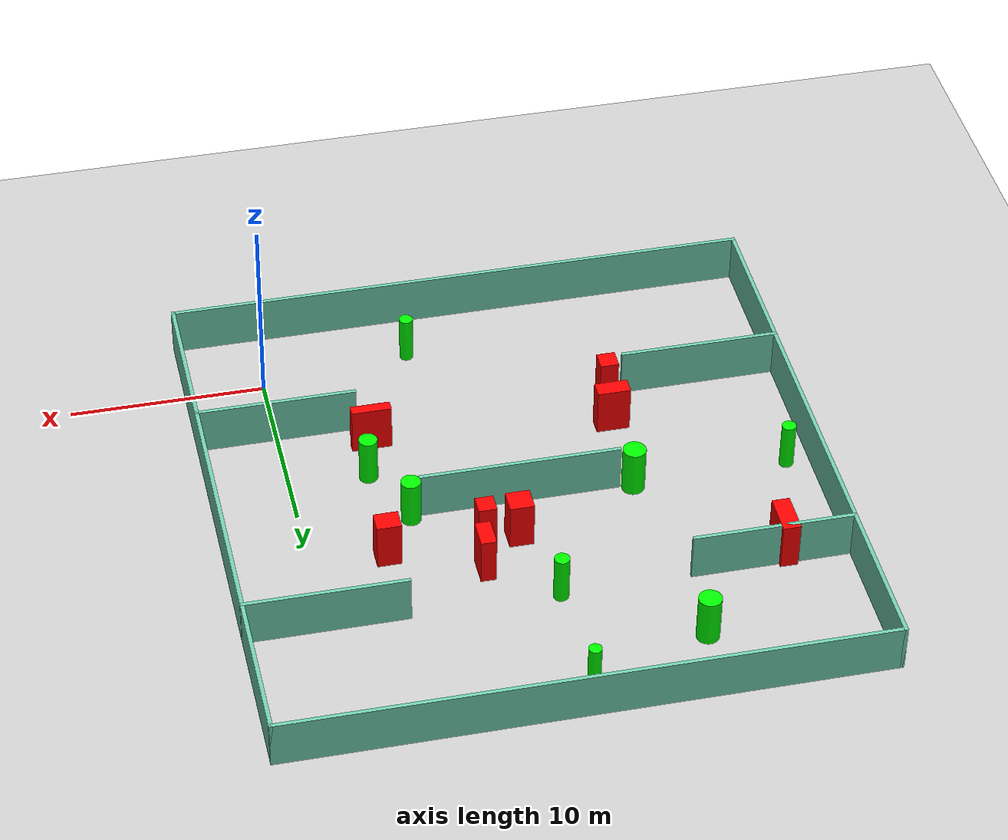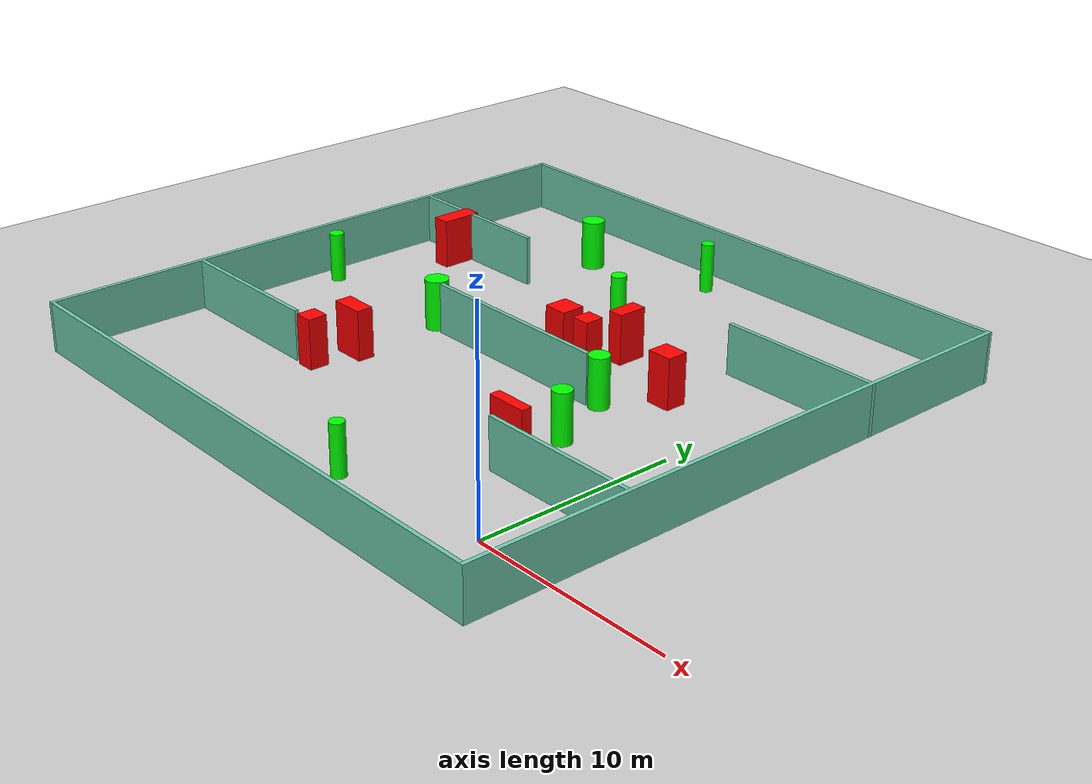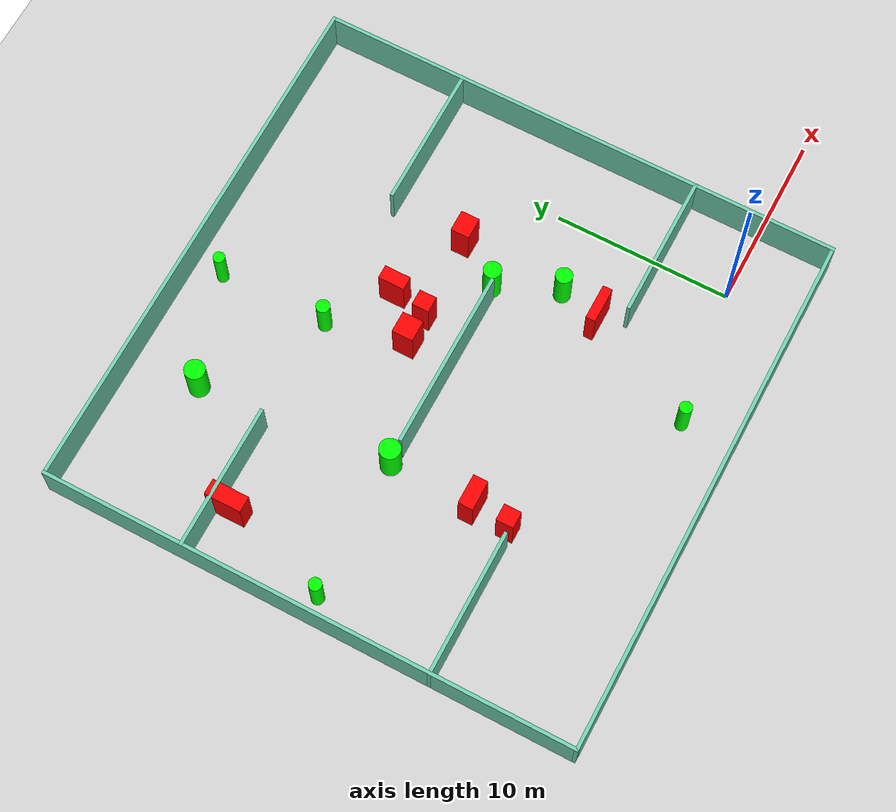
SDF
<sdf version="1.7">
 <world name="default">
  <light name="sun" type="directional">
   <pose>0 0 10 0 -0 0</pose>
   <diffuse>0.8 0.8 0.8 1</diffuse>
   <specular>0.2 0.2 0.2 1</specular>
   <attenuation>
    <range>1000</range>
    <constant>0.9</constant>
    <linear>0.01</linear>
    <quadratic>0.001</quadratic>
   </attenuation>
   <direction>-0.5 0.1 -0.9</direction>
   <spot><inner_angle>0</inner_angle><outer_angle>0</outer_angle><falloff>0</falloff></spot>
  </light>
  <model name="ground_plane">
   <static>1</static>
   <link name="link">
    <collision name="collision">
     <geometry><plane><normal>0 0 1</normal><size>100 100</size></plane></geometry>
     <surface>
      <contact><collide_bitmask>65535</collide_bitmask></contact>
      <friction><ode><mu>100</mu><mu2>50</mu2></ode></friction>
     </surface>
    </collision>
    <visual name="visual">
     <cast_shadows>0</cast_shadows>
     <geometry><plane><normal>0 0 1</normal><size>100 100</size></plane></geometry>
     <material>
      <script><uri>file://media/materials/scripts/gazebo.material</uri><name>Gazebo/Grey</name></script>
     </material>
    </visual>
   </link>
  </model>
  <gravity>0 0 -9.8</gravity>
  <magnetic_field>6e-06 2.3e-05 -4.2e-05</magnetic_field>
  <atmosphere type="adiabatic"/>
  <physics type="ode">
   <max_step_size>0.001</max_step_size>
   <real_time_factor>1</real_time_factor>
   <real_time_update_rate>1000</real_time_update_rate>
  </physics>
  <scene><ambient>0.4 0.4 0.4 1</ambient><background>0.7 0.7 0.7 1</background><shadows>1</shadows></scene>
  <spherical_coordinates>
   <surface_model>EARTH_WGS84</surface_model>
   <latitude_deg>0</latitude_deg>
   <longitude_deg>0</longitude_deg>
   <elevation>0</elevation>
   <heading_deg>0</heading_deg>
  </spherical_coordinates>
  <model name="my_base_walls">
   <link name="Wall_10">
    <collision name="Wall_10_Collision">
     <geometry><box><size>8.2 0.2 2.5</size></box></geometry>
     <pose>0 0 1.25 0 -0 0</pose>
    </collision>
    <visual name="Wall_10_Visual">
     <pose>0 0 1.25 0 -0 0</pose>
     <geometry><box><size>8.2 0.2 2.5</size></box></geometry>
     <material>
      <script><uri>file://media/materials/scripts/gazebo.material</uri><name>Gazebo/Grey</name></script>
      <ambient>0.435294 0.796078 0.67451 1</ambient>
     </material>
     <meta><layer>0</layer></meta>
    </visual>
    <pose>-11 -7 0 0 -0 0</pose>
   </link>
   <link name="Wall_12">
    <collision name="Wall_12_Collision">
     <geometry><box><size>8.2 0.2 2.5</size></box></geometry>
     <pose>0 0 1.25 0 -0 0</pose>
    </collision>
    <visual name="Wall_12_Visual">
     <pose>0 0 1.25 0 -0 0</pose>
     <geometry><box><size>8.2 0.2 2.5</size></box></geometry>
     <material>
      <script><uri>file://media/materials/scripts/gazebo.material</uri><name>Gazebo/Grey</name></script>
      <ambient>0.435294 0.796078 0.67451 1</ambient>
     </material>
     <meta><layer>0</layer></meta>
    </visual>
    <pose>-11 7 0 0 -0 0</pose>
   </link>
   <link name="Wall_14">
    <collision name="Wall_14_Collision">
     <geometry><box><size>8.2 0.2 2.5</size></box></geometry>
     <pose>0 0 1.25 0 -0 0</pose>
    </collision>
    <visual name="Wall_14_Visual">
     <pose>0 0 1.25 0 -0 0</pose>
     <geometry><box><size>8.2 0.2 2.5</size></box></geometry>
     <material>
      <script><uri>file://media/materials/scripts/gazebo.material</uri><name>Gazebo/Grey</name></script>
      <ambient>0.435294 0.796078 0.67451 1</ambient>
     </material>
     <meta><layer>0</layer></meta>
    </visual>
    <pose>11 7 0 0 -0 3.14159</pose>
   </link>
   <link name="Wall_16">
    <collision name="Wall_16_Collision">
     <geometry><box><size>10.2 0.2 2.5</size></box></geometry>
     <pose>0 0 1.25 0 -0 0</pose>
    </collision>
    <visual name="Wall_16_Visual">
     <pose>0 0 1.25 0 -0 0</pose>
     <geometry><box><size>10.2 0.2 2.5</size></box></geometry>
     <material>
      <script><uri>file://media/materials/scripts/gazebo.material</uri><name>Gazebo/Grey</name></script>
      <ambient>0.435294 0.796078 0.67451 1</ambient>
     </material>
     <meta><layer>0</layer></meta>
    </visual>
    <pose>0 0 0 0 -0 3.14159</pose>
   </link>
   <link name="Wall_2">
    <collision name="Wall_2_Collision">
     <geometry><box><size>30.2 0.2 2.5</size></box></geometry>
     <pose>0 0 1.25 0 -0 0</pose>
    </collision>
    <visual name="Wall_2_Visual">
     <pose>0 0 1.25 0 -0 0</pose>
     <geometry><box><size>30.2 0.2 2.5</size></box></geometry>
     <material>
      <script><uri>file://media/materials/scripts/gazebo.material</uri><name>Gazebo/Grey</name></script>
      <ambient>0.435294 0.796078 0.67451 1</ambient>
     </material>
     <meta><layer>0</layer></meta>
    </visual>
    <pose>0 -15 0 0 -0 3.14159</pose>
   </link>
   <link name="Wall_3">
    <collision name="Wall_3_Collision">
     <geometry><box><size>30.2 0.2 2.5</size></box></geometry>
     <pose>0 0 1.25 0 -0 0</pose>
    </collision>
    <visual name="Wall_3_Visual">
     <pose>0 0 1.25 0 -0 0</pose>
     <geometry><box><size>30.2 0.2 2.5</size></box></geometry>
     <material>
      <script><uri>file://media/materials/scripts/gazebo.material</uri><name>Gazebo/Grey</name></script>
      <ambient>0.435294 0.796078 0.67451 1</ambient>
     </material>
     <meta><layer>0</layer></meta>
    </visual>
    <pose>-15 0 0 0 -0 1.5708</pose>
   </link>
   <link name="Wall_4">
    <collision name="Wall_4_Collision">
     <geometry><box><size>30.2 0.2 2.5</size></box></geometry>
     <pose>0 0 1.25 0 -0 0</pose>
    </collision>
    <visual name="Wall_4_Visual">
     <pose>0 0 1.25 0 -0 0</pose>
     <geometry><box><size>30.2 0.2 2.5</size></box></geometry>
     <material>
      <script><uri>file://media/materials/scripts/gazebo.material</uri><name>Gazebo/Grey</name></script>
      <ambient>0.435294 0.796078 0.67451 1</ambient>
     </material>
     <meta><layer>0</layer></meta>
    </visual>
    <pose>0 15 0 0 -0 0</pose>
   </link>
   <link name="Wall_6">
    <collision name="Wall_6_Collision">
     <geometry><box><size>30.2 0.2 2.5</size></box></geometry>
     <pose>0 0 1.25 0 -0 0</pose>
    </collision>
    <visual name="Wall_6_Visual">
     <pose>0 0 1.25 0 -0 0</pose>
     <geometry><box><size>30.2 0.2 2.5</size></box></geometry>
     <material>
      <script><uri>file://media/materials/scripts/gazebo.material</uri><name>Gazebo/Grey</name></script>
      <ambient>0.435294 0.796078 0.67451 1</ambient>
     </material>
     <meta><layer>0</layer></meta>
    </visual>
    <pose>15 0 0 0 -0 1.5708</pose>
   </link>
   <link name="Wall_8">
    <collision name="Wall_8_Collision">
     <geometry><box><size>8.2 0.2 2.5</size></box></geometry>
     <pose>0 0 1.25 0 -0 0</pose>
    </collision>
    <visual name="Wall_8_Visual">
     <pose>0 0 1.25 0 -0 0</pose>
     <geometry><box><size>8.2 0.2 2.5</size></box></geometry>
     <material>
      <script><uri>file://media/materials/scripts/gazebo.material</uri><name>Gazebo/Grey</name></script>
      <ambient>0.435294 0.796078 0.67451 1</ambient>
     </material>
     <meta><layer>0</layer></meta>
    </visual>
    <pose>11 -7 0 0 -0 3.14159</pose>
   </link>
   <static>1</static>
   <pose>-11 11 0 0 -0 0</pose>
  </model>
  <model name="cylinder1">
   <static>1</static>
   <link name="link">
    <inertial>
     <mass>1</mass>
     <inertia><ixx>0.5</ixx><ixy>0</ixy><ixz>0</ixz><iyy>0.5</iyy><iyz>0</iyz><izz>1</izz></inertia>
    </inertial>
    <collision name="collision">
     <geometry><cylinder><radius>0.5737264908327451</radius><length>2.5</length></cylinder></geometry>
    </collision>
    <visual name="visual">
     <geometry><cylinder><radius>0.5737264908327451</radius><length>2.5</length></cylinder></geometry>
     <material>
      <ambient>0 1 0 1</ambient>
      <diffuse>0 1 0 1</diffuse>
      <specular>0.1 0.1 0.1 1</specular>
      <emissive>0 0 0 0</emissive>
     </material>
    </visual>
   </link>
   <pose>-17.624473274105704 22.15642886900757 1.25 0 0 0</pose>
  </model>
  <model name="cylinder2">
   <static>1</static>
   <link name="link">
    <inertial>
     <mass>1</mass>
     <inertia><ixx>0.5</ixx><ixy>0</ixy><ixz>0</ixz><iyy>0.5</iyy><iyz>0</iyz><izz>1</izz></inertia>
    </inertial>
    <collision name="collision">
     <geometry><cylinder><radius>0.32285912051089544</radius><length>2.5</length></cylinder></geometry>
    </collision>
    <visual name="visual">
     <geometry><cylinder><radius>0.32285912051089544</radius><length>2.5</length></cylinder></geometry>
     <material>
      <ambient>0 1 0 1</ambient>
      <diffuse>0 1 0 1</diffuse>
      <specular>0.1 0.1 0.1 1</specular>
      <emissive>0 0 0 0</emissive>
     </material>
    </visual>
   </link>
   <pose>-11.53690169816796 24.267791441031065 1.25 0 0 0</pose>
  </model>
  <model name="cylinder3">
   <static>1</static>
   <link name="link">
    <inertial>
     <mass>1</mass>
     <inertia><ixx>0.5</ixx><ixy>0</ixy><ixz>0</ixz><iyy>0.5</iyy><iyz>0</iyz><izz>1</izz></inertia>
    </inertial>
    <collision name="collision">
     <geometry><cylinder><radius>0.4729806176644654</radius><length>2.5</length></cylinder></geometry>
    </collision>
    <visual name="visual">
     <geometry><cylinder><radius>0.4729806176644654</radius><length>2.5</length></cylinder></geometry>
     <material>
      <ambient>0 1 0 1</ambient>
      <diffuse>0 1 0 1</diffuse>
      <specular>0.1 0.1 0.1 1</specular>
      <emissive>0 0 0 0</emissive>
     </material>
    </visual>
   </link>
   <pose>-3.9920921874644364 7.791197352728638 1.25 0 0 0</pose>
  </model>
  <model name="cylinder4">
   <static>1</static>
   <link name="link">
    <inertial>
     <mass>1</mass>
     <inertia><ixx>0.5</ixx><ixy>0</ixy><ixz>0</ixz><iyy>0.5</iyy><iyz>0</iyz><izz>1</izz></inertia>
    </inertial>
    <collision name="collision">
     <geometry><cylinder><radius>0.5852479316174475</radius><length>2.5</length></cylinder></geometry>
    </collision>
    <visual name="visual">
     <geometry><cylinder><radius>0.5852479316174475</radius><length>2.5</length></cylinder></geometry>
     <material>
      <ambient>0 1 0 1</ambient>
      <diffuse>0 1 0 1</diffuse>
      <specular>0.1 0.1 0.1 1</specular>
      <emissive>0 0 0 0</emissive>
     </material>
    </visual>
   </link>
   <pose>-16.738506482663738 11.22350070993039 1.25 0 0 0</pose>
  </model>
  <model name="cylinder5">
   <static>1</static>
   <link name="link">
    <inertial>
     <mass>1</mass>
     <inertia><ixx>0.5</ixx><ixy>0</ixy><ixz>0</ixz><iyy>0.5</iyy><iyz>0</iyz><izz>1</izz></inertia>
    </inertial>
    <collision name="collision">
     <geometry><cylinder><radius>0.5007773931611735</radius><length>2.5</length></cylinder></geometry>
    </collision>
    <visual name="visual">
     <geometry><cylinder><radius>0.5007773931611735</radius><length>2.5</length></cylinder></geometry>
     <material>
      <ambient>0 1 0 1</ambient>
      <diffuse>0 1 0 1</diffuse>
      <specular>0.1 0.1 0.1 1</specular>
      <emissive>0 0 0 0</emissive>
     </material>
    </visual>
   </link>
   <pose>-5.457314398447764 11.253395019373663 1.25 0 0 0</pose>
  </model>
  <model name="cylinder6">
   <static>1</static>
   <link name="link">
    <inertial>
     <mass>1</mass>
     <inertia><ixx>0.5</ixx><ixy>0</ixy><ixz>0</ixz><iyy>0.5</iyy><iyz>0</iyz><izz>1</izz></inertia>
    </inertial>
    <collision name="collision">
     <geometry><cylinder><radius>0.36054779086539274</radius><length>2.5</length></cylinder></geometry>
    </collision>
    <visual name="visual">
     <geometry><cylinder><radius>0.36054779086539274</radius><length>2.5</length></cylinder></geometry>
     <material>
      <ambient>0 1 0 1</ambient>
      <diffuse>0 1 0 1</diffuse>
      <specular>0.1 0.1 0.1 1</specular>
      <emissive>0 0 0 0</emissive>
     </material>
    </visual>
   </link>
   <pose>-24.704806218461453 11.083402679570971 1.25 0 0 0</pose>
  </model>
  <model name="cylinder7">
   <static>1</static>
   <link name="link">
    <inertial>
     <mass>1</mass>
     <inertia><ixx>0.5</ixx><ixy>0</ixy><ixz>0</ixz><iyy>0.5</iyy><iyz>0</iyz><izz>1</izz></inertia>
    </inertial>
    <collision name="collision">
     <geometry><cylinder><radius>0.3822254287581357</radius><length>2.5</length></cylinder></geometry>
    </collision>
    <visual name="visual">
     <geometry><cylinder><radius>0.3822254287581357</radius><length>2.5</length></cylinder></geometry>
     <material>
      <ambient>0 1 0 1</ambient>
      <diffuse>0 1 0 1</diffuse>
      <specular>0.1 0.1 0.1 1</specular>
      <emissive>0 0 0 0</emissive>
     </material>
    </visual>
   </link>
   <pose>-11.433684708000492 18.075444105031988 1.25 0 0 0</pose>
  </model>
  <model name="cylinder8">
   <static>1</static>
   <link name="link">
    <inertial>
     <mass>1</mass>
     <inertia><ixx>0.5</ixx><ixy>0</ixy><ixz>0</ixz><iyy>0.5</iyy><iyz>0</iyz><izz>1</izz></inertia>
    </inertial>
    <collision name="collision">
     <geometry><cylinder><radius>0.3511118619881572</radius><length>2.5</length></cylinder></geometry>
    </collision>
    <visual name="visual">
     <geometry><cylinder><radius>0.3511118619881572</radius><length>2.5</length></cylinder></geometry>
     <material>
      <ambient>0 1 0 1</ambient>
      <diffuse>0 1 0 1</diffuse>
      <specular>0.1 0.1 0.1 1</specular>
      <emissive>0 0 0 0</emissive>
     </material>
    </visual>
   </link>
   <pose>-7.687490786086929 -1.0287458979352913 1.25 0 0 0</pose>
  </model>
  <model name="box1">
   <static>1</static>
   <link name="link">
    <inertial>
     <mass>1</mass>
     <inertia><ixx>0.083</ixx><ixy>0</ixy><ixz>0</ixz><iyy>0.083</iyy><iyz>0</iyz><izz>0.083</izz></inertia>
    </inertial>
    <collision name="collision">
     <geometry><box><size>1.6960735415541608 0.8369723623135621 2.5</size></box></geometry>
    </collision>
    <visual name="visual">
     <geometry><box><size>1.6960735415541608 0.8369723623135621 2.5</size></box></geometry>
     <material>
      <ambient>1 0 0 1</ambient>
      <diffuse>1 0 0 1</diffuse>
      <specular>0.1 0.1 0.1 1</specular>
      <emissive>0 0 0 0</emissive>
     </material>
    </visual>
    <sensor name="my_contact" type="contact">
     <contact><collision>box_collision</collision><topic>__default_topic__</topic></contact>
    </sensor>
   </link>
   <pose>-16.81653130331398 6.432671881565508 1.25 0 0 0</pose>
  </model>
  <model name="box2">
   <static>1</static>
   <link name="link">
    <inertial>
     <mass>1</mass>
     <inertia><ixx>0.083</ixx><ixy>0</ixy><ixz>0</ixz><iyy>0.083</iyy><iyz>0</iyz><izz>0.083</izz></inertia>
    </inertial>
    <collision name="collision">
     <geometry><box><size>2.030469288154057 0.542407354747098 2.5</size></box></geometry>
    </collision>
    <visual name="visual">
     <geometry><box><size>2.030469288154057 0.542407354747098 2.5</size></box></geometry>
     <material>
      <ambient>1 0 0 1</ambient>
      <diffuse>1 0 0 1</diffuse>
      <specular>0.1 0.1 0.1 1</specular>
      <emissive>0 0 0 0</emissive>
     </material>
    </visual>
    <sensor name="my_contact" type="contact">
     <contact><collision>box_collision</collision><topic>__default_topic__</topic></contact>
    </sensor>
   </link>
   <pose>-4.574790623954495 5.464230423737133 1.25 0 0 0</pose>
  </model>
  <model name="box3">
   <static>1</static>
   <link name="link">
    <inertial>
     <mass>1</mass>
     <inertia><ixx>0.083</ixx><ixy>0</ixy><ixz>0</ixz><iyy>0.083</iyy><iyz>0</iyz><izz>0.083</izz></inertia>
    </inertial>
    <collision name="collision">
     <geometry><box><size>0.9432323627359314 0.9747968031235728 2.5</size></box></geometry>
    </collision>
    <visual name="visual">
     <geometry><box><size>0.9432323627359314 0.9747968031235728 2.5</size></box></geometry>
     <material>
      <ambient>1 0 0 1</ambient>
      <diffuse>1 0 0 1</diffuse>
      <specular>0.1 0.1 0.1 1</specular>
      <emissive>0 0 0 0</emissive>
     </material>
    </visual>
    <sensor name="my_contact" type="contact">
     <contact><collision>box_collision</collision><topic>__default_topic__</topic></contact>
    </sensor>
   </link>
   <pose>-17.09272296314026 4.277286344153961 1.25 0 0 0</pose>
  </model>
  <model name="box4">
   <static>1</static>
   <link name="link">
    <inertial>
     <mass>1</mass>
     <inertia><ixx>0.083</ixx><ixy>0</ixy><ixz>0</ixz><iyy>0.083</iyy><iyz>0</iyz><izz>0.083</izz></inertia>
    </inertial>
    <collision name="collision">
     <geometry><box><size>1.2191788949695392 1.1995304680684227 2.5</size></box></geometry>
    </collision>
    <visual name="visual">
     <geometry><box><size>1.2191788949695392 1.1995304680684227 2.5</size></box></geometry>
     <material>
      <ambient>1 0 0 1</ambient>
      <diffuse>1 0 0 1</diffuse>
      <specular>0.1 0.1 0.1 1</specular>
      <emissive>0 0 0 0</emissive>
     </material>
    </visual>
    <sensor name="my_contact" type="contact">
     <contact><collision>box_collision</collision><topic>__default_topic__</topic></contact>
    </sensor>
   </link>
   <pose>-10.373958491316564 13.640458620317524 1.25 0 0 0</pose>
  </model>
  <model name="box5">
   <static>1</static>
   <link name="link">
    <inertial>
     <mass>1</mass>
     <inertia><ixx>0.083</ixx><ixy>0</ixy><ixz>0</ixz><iyy>0.083</iyy><iyz>0</iyz><izz>0.083</izz></inertia>
    </inertial>
    <collision name="collision">
     <geometry><box><size>0.9125053053010665 0.9733812302337279 2.5</size></box></geometry>
    </collision>
    <visual name="visual">
     <geometry><box><size>0.9125053053010665 0.9733812302337279 2.5</size></box></geometry>
     <material>
      <ambient>1 0 0 1</ambient>
      <diffuse>1 0 0 1</diffuse>
      <specular>0.1 0.1 0.1 1</specular>
      <emissive>0 0 0 0</emissive>
     </material>
    </visual>
    <sensor name="my_contact" type="contact">
     <contact><collision>box_collision</collision><topic>__default_topic__</topic></contact>
    </sensor>
   </link>
   <pose>-8.704012405991215 13.564582249850474 1.25 0 0 0</pose>
  </model>
  <model name="box6">
   <static>1</static>
   <link name="link">
    <inertial>
     <mass>1</mass>
     <inertia><ixx>0.083</ixx><ixy>0</ixy><ixz>0</ixz><iyy>0.083</iyy><iyz>0</iyz><izz>0.083</izz></inertia>
    </inertial>
    <collision name="collision">
     <geometry><box><size>0.7736189507648012 1.4870605956615934 2.5</size></box></geometry>
    </collision>
    <visual name="visual">
     <geometry><box><size>0.7736189507648012 1.4870605956615934 2.5</size></box></geometry>
     <material>
      <ambient>1 0 0 1</ambient>
      <diffuse>1 0 0 1</diffuse>
      <specular>0.1 0.1 0.1 1</specular>
      <emissive>0 0 0 0</emissive>
     </material>
    </visual>
    <sensor name="my_contact" type="contact">
     <contact><collision>box_collision</collision><topic>__default_topic__</topic></contact>
    </sensor>
   </link>
   <pose>-8.254651699545438 15.573534563034684 1.25 0 0 0</pose>
  </model>
  <model name="box7">
   <static>1</static>
   <link name="link">
    <inertial>
     <mass>1</mass>
     <inertia><ixx>0.083</ixx><ixy>0</ixy><ixz>0</ixz><iyy>0.083</iyy><iyz>0</iyz><izz>0.083</izz></inertia>
    </inertial>
    <collision name="collision">
     <geometry><box><size>1.2330702975004222 1.058680748234634 2.5</size></box></geometry>
    </collision>
    <visual name="visual">
     <geometry><box><size>1.2330702975004222 1.058680748234634 2.5</size></box></geometry>
     <material>
      <ambient>1 0 0 1</ambient>
      <diffuse>1 0 0 1</diffuse>
      <specular>0.1 0.1 0.1 1</specular>
      <emissive>0 0 0 0</emissive>
     </material>
    </visual>
    <sensor name="my_contact" type="contact">
     <contact><collision>box_collision</collision><topic>__default_topic__</topic></contact>
    </sensor>
   </link>
   <pose>-3.7927880933580447 13.746377500948835 1.25 0 0 0</pose>
  </model>
  <model name="box8">
   <static>1</static>
   <link name="link">
    <inertial>
     <mass>1</mass>
     <inertia><ixx>0.083</ixx><ixy>0</ixy><ixz>0</ixz><iyy>0.083</iyy><iyz>0</iyz><izz>0.083</izz></inertia>
    </inertial>
    <collision name="collision">
     <geometry><box><size>0.894936774096128 2.0835798013045146 2.5</size></box></geometry>
    </collision>
    <visual name="visual">
     <geometry><box><size>0.894936774096128 2.0835798013045146 2.5</size></box></geometry>
     <material>
      <ambient>1 0 0 1</ambient>
      <diffuse>1 0 0 1</diffuse>
      <specular>0.1 0.1 0.1 1</specular>
      <emissive>0 0 0 0</emissive>
     </material>
    </visual>
    <sensor name="my_contact" type="contact">
     <contact><collision>box_collision</collision><topic>__default_topic__</topic></contact>
    </sensor>
   </link>
   <pose>-22.762817981572667 17.271175438934762 1.25 0 0 0</pose>
  </model>
 </world>
</sdf>
